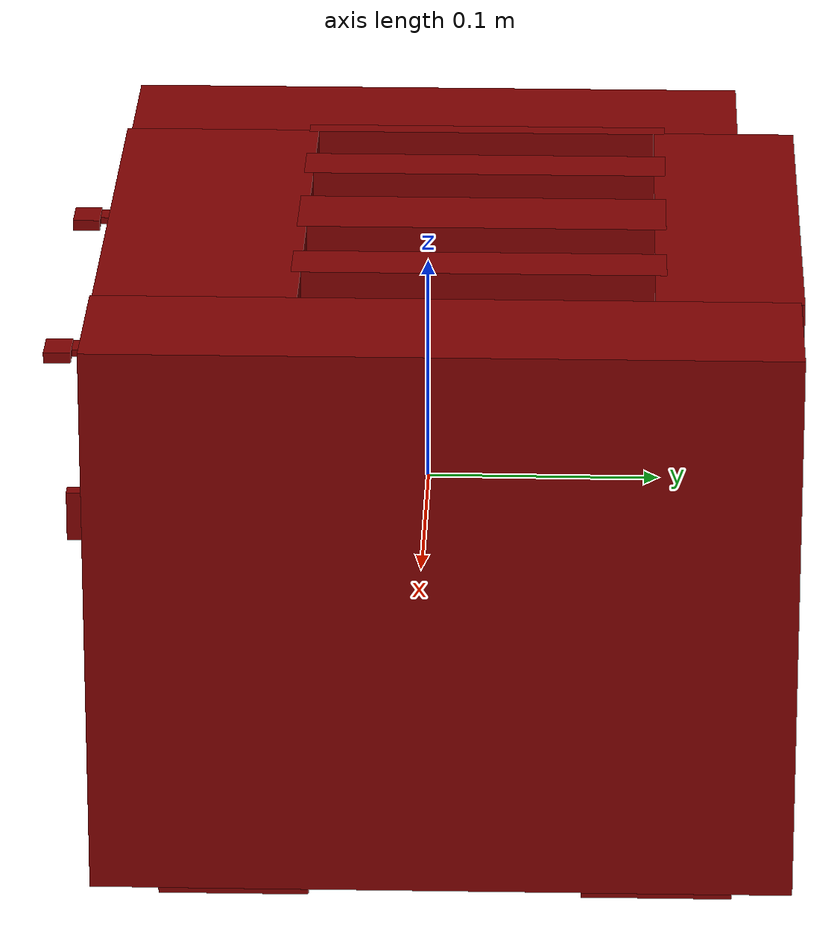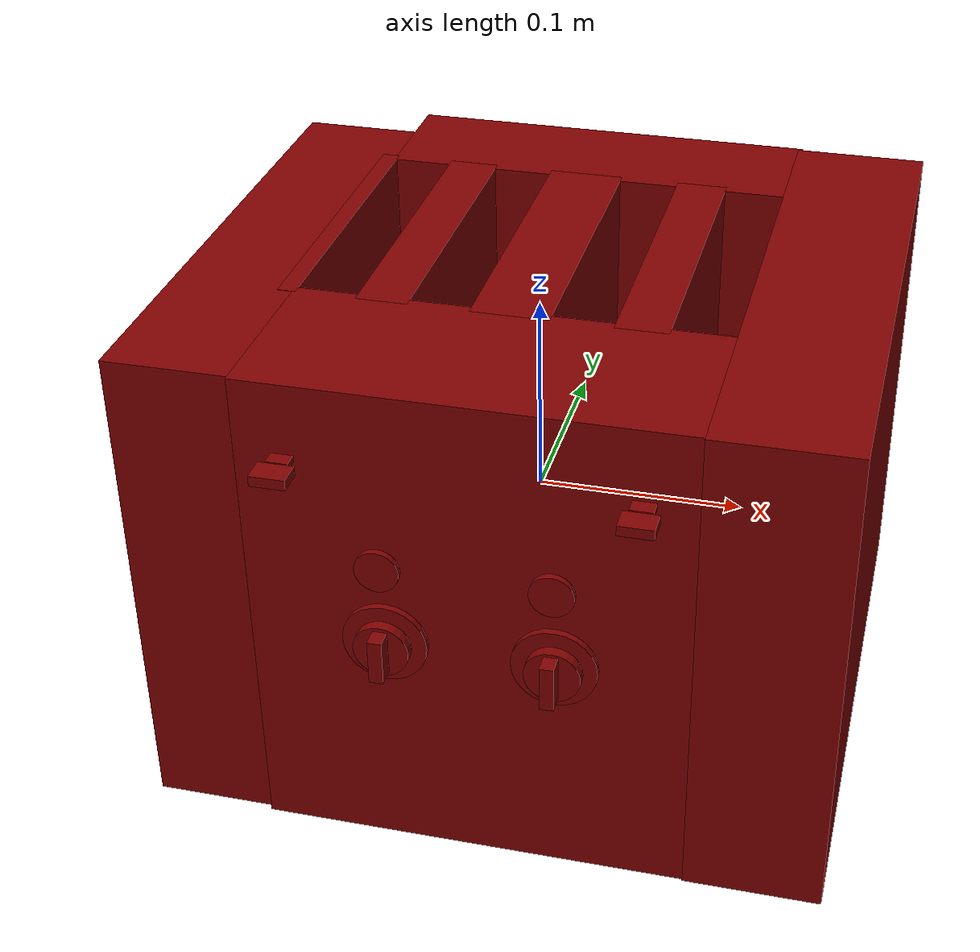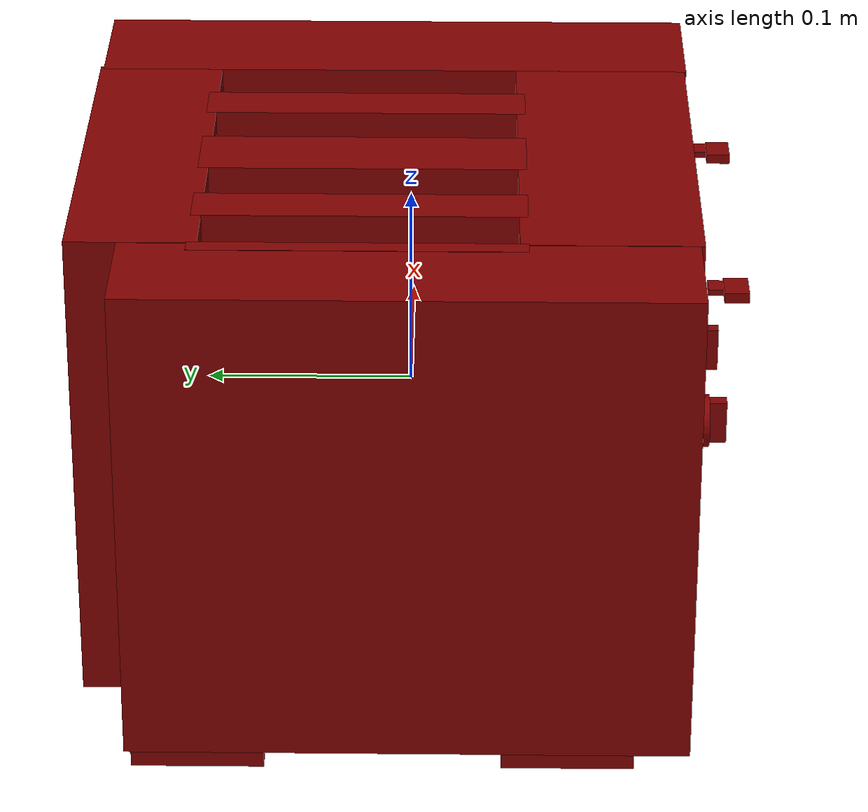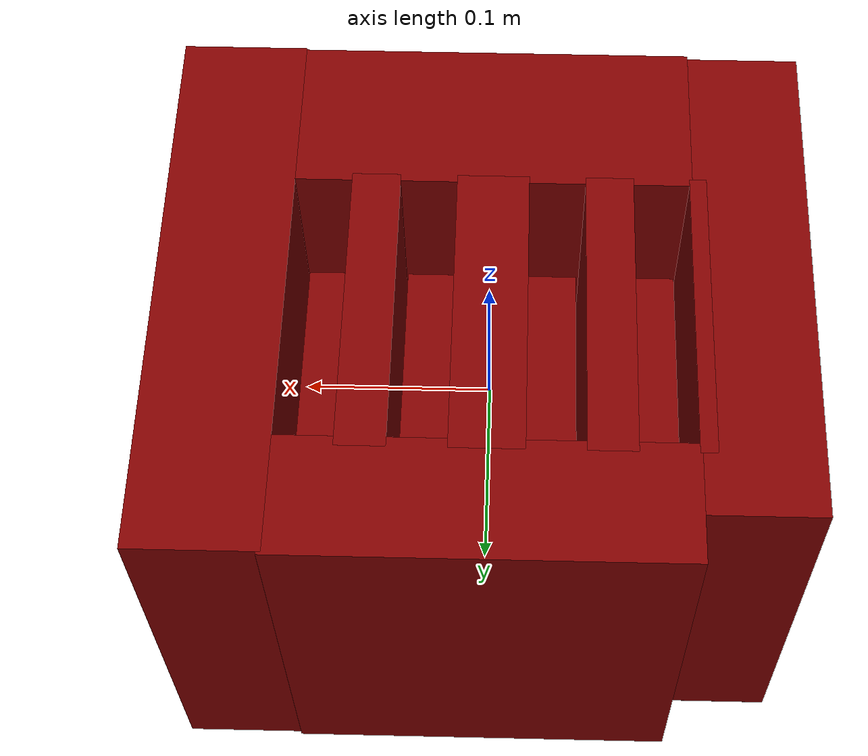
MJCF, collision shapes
<?xml version='1.0' encoding='UTF-8'?>
<mujoco model="model">
  <option timestep="0.002" gravity="0.0 0.0 -9.81"/>
  <compiler angle="radian"/>
  <asset>
    <mesh file="visuals/sideL_button_cancel.obj" name="sideL_button_cancel_vis"/>
    <mesh file="visuals/sideL_knob_doneness.obj" name="sideL_knob_doneness_vis"/>
    <mesh file="visuals/sideL_lever.obj" name="sideL_lever_vis"/>
    <mesh file="visuals/sideR_button_cancel.obj" name="sideR_button_cancel_vis"/>
    <mesh file="visuals/sideR_knob_doneness.obj" name="sideR_knob_doneness_vis"/>
    <mesh file="visuals/sideR_lever.obj" name="sideR_lever_vis"/>
    <mesh file="visuals/Body001.obj" name="Body001_vis"/>
    <mesh file="visuals/Body002.obj" name="Body002_vis"/>
    <texture file="visuals/T_BC001.png" name="Body001_material" type="2d"/>
    <material name="Body001_material" rgba="1 1 1 1.0" texture="Body001_material" shininess="0.4472135901451111" specular="0.3103448502657381"/>
    <texture file="visuals/T_BC001.png" name="sideL_button_cancel_material" type="2d"/>
    <material name="sideL_button_cancel_material" rgba="1 1 1 1.0" texture="sideL_button_cancel_material" shininess="0.4472135901451111" specular="0.3103448502657381"/>
    <texture file="visuals/T_BC001.png" name="sideL_knob_doneness_material" type="2d"/>
    <material name="sideL_knob_doneness_material" rgba="1 1 1 1.0" texture="sideL_knob_doneness_material" shininess="0.4472135901451111" specular="0.3103448502657381"/>
    <texture file="visuals/T_BC001.png" name="sideL_lever_material" type="2d"/>
    <material name="sideL_lever_material" rgba="1 1 1 1.0" texture="sideL_lever_material" shininess="0.4472135901451111" specular="0.3103448502657381"/>
    <texture file="visuals/T_BC001.png" name="sideR_button_cancel_material" type="2d"/>
    <material name="sideR_button_cancel_material" rgba="1 1 1 1.0" texture="sideR_button_cancel_material" shininess="0.4472135901451111" specular="0.3103448502657381"/>
    <texture file="visuals/T_BC001.png" name="sideR_knob_doneness_material" type="2d"/>
    <material name="sideR_knob_doneness_material" rgba="1 1 1 1.0" texture="sideR_knob_doneness_material" shininess="0.4472135901451111" specular="0.3103448502657381"/>
    <texture file="visuals/T_BC001.png" name="sideR_lever_material" type="2d"/>
    <material name="sideR_lever_material" rgba="1 1 1 1.0" texture="sideR_lever_material" shininess="0.4472135901451111" specular="0.3103448502657381"/>
    <texture file="visuals/T_BC001.png" name="Body002_material" type="2d"/>
    <material name="Body002_material" rgba="1 1 1 1.0" texture="Body002_material" shininess="1" specular="1"/>
  </asset>
  <default>
    <default class="visual">
      <geom conaffinity="0" contype="0" group="1" type="mesh"/>
    </default>
    <default class="collision_1">
      <geom group="0" rgba="0.5 0 0 0.5" solref="0.004 1" solimp="0.998 0.998 0.001"/>
    </default>
    <default class="collision_2">
      <geom group="0" rgba="0.5 0 0 0.5" solref="0.004 1" solimp="0.998 0.998 0.001"/>
    </default>
    <default class="collision_3">
      <geom group="0" rgba="0.5 0 0 0.5" solref="0.004 1" solimp="0.998 0.998 0.001"/>
    </default>
    <default class="collision_4">
      <geom group="0" rgba="0.5 0 0 0.5" solref="0.004 1" solimp="0.998 0.998 0.001"/>
    </default>
    <default class="collision_5">
      <geom group="0" rgba="0.5 0 0 0.5" solref="0.004 1" solimp="0.998 0.998 0.001"/>
    </default>
    <default class="collision_6">
      <geom group="0" rgba="0.5 0 0 0.5" solref="0.004 1" solimp="0.998 0.998 0.001"/>
    </default>
    <default class="collision_7">
      <geom group="0" rgba="0.5 0 0 0.5" solref="0.004 1" solimp="0.998 0.998 0.001"/>
    </default>
    <default class="collision_8">
      <geom group="0" rgba="0.5 0 0 0.5" solref="0.004 1" solimp="0.998 0.998 0.001"/>
    </default>
    <default class="spawn">
      <geom group="0" rgba="1 1 1 0.5" contype="0" conaffinity="0"/>
      <site group="0" rgba="1 1 1 0.5"/>
    </default>
    <default class="region">
      <geom group="1" conaffinity="0" contype="0" rgba="0 1 0 0" mass="0"/>
    </default>
  </default>
  <worldbody>
    <body>
      <body name="object">
        <geom mesh="Body001_vis" type="mesh" solimp="0.998 0.998 0.001" solref="0.001 1" friction="0.95 0.3 0.1" class="visual" material="Body001_material"/>
        <geom type="box" pos="0.00062586 -0.09355983 0.00172906" size="0.10200154036283493 0.0423552580177784 0.12018711119890213" quat="1.0 0.0 0.0 0.0" class="collision_1"/>
        <geom type="box" pos="0.00062666 0.12736655 0.00172906" size="0.10174476355314255 0.03075541742146015 0.12018713355064392" quat="1.0 0.0 0.0 0.0" class="collision_1"/>
        <geom type="box" pos="0.12193061 -0.07734576 -0.11861029" size="0.03183386102318764 0.031489286571741104 0.007651138585060835" quat="1.0 0.0 0.0 0.0" class="collision_1"/>
        <geom type="box" pos="-0.01672585 -0.08744895 -0.11861029" size="0.018773581832647324 0.020808225497603416 0.006321911234408617" quat="1.0 0.0 0.0 0.0" class="collision_1"/>
        <geom type="box" pos="-0.01672585 0.10941975 -0.11861029" size="0.018773527815937996 0.017574893310666084 0.006321890279650688" quat="1.0 0.0 0.0 0.0" class="collision_1"/>
        <geom type="box" pos="-0.12524688 -0.07622369 -0.11861029" size="0.03183387964963913 0.031489308923482895 0.007651146501302719" quat="1.0 0.0 0.0 0.0" class="collision_1"/>
        <geom type="box" pos="0.12145668 0.10015215 -0.11861029" size="0.03183388337492943 0.03148931264877319 0.007651147898286581" quat="1.0 0.0 0.0 0.0" class="collision_1"/>
        <geom type="box" pos="-0.12572086 0.09903001 -0.11861029" size="0.031833890825510025 0.03148932009935379 0.007651144172996283" quat="1.0 0.0 0.0 0.0" class="collision_1"/>
        <geom type="box" pos="-0.00057874 0.02311775 0.01895381" size="0.01828160136938095 0.07838138937950134 0.10296251624822617" quat="1.0 0.0 0.0 0.0" class="collision_1"/>
        <geom type="box" pos="0.00040911 0.02311775 -0.08250634" size="0.10419651865959167 0.0783819854259491 0.03505980595946312" quat="1.0 0.0 0.0 0.0" class="collision_1"/>
        <geom type="box" pos="-0.10417006 0.02311773 0.01895381" size="0.004292699508368969 0.07838136702775955 0.10296256095170975" quat="1.0 0.0 0.0 0.0" class="collision_1"/>
        <geom type="box" pos="-0.05950329 0.02311775 0.01895381" size="0.01213828194886446 0.07838114351034164 0.10296288132667542" quat="1.0 0.0 0.0 0.0" class="collision_1"/>
        <geom type="box" pos="0.05873193 0.02311775 0.01895381" size="0.012336074374616146 0.07838139683008194 0.10296259820461273" quat="1.0 0.0 0.0 0.0" class="collision_1"/>
        <geom type="box" pos="0.10276670 0.02311777 0.01895381" size="0.002607272006571293 0.07838138192892075 0.10296262055635452" quat="1.0 0.0 0.0 0.0" class="collision_1"/>
        <geom type="box" pos="0.13224380 0.00991620 0.00172906" size="0.03220511972904205 0.14674082398414612 0.12018747627735138" quat="1.0 0.0 0.0 0.0" class="collision_1"/>
        <geom type="cylinder" pos="-0.03745455 -0.13624727 -0.00302669" size="0.019571812823414803 0.003010922810062766" quat="0.7071067094802856 -0.70710688829422 -1.5700925641616852e-16 -1.2790027470567158e-23" class="collision_1"/>
        <geom type="cylinder" pos="0.03959883 -0.13637664 -0.00302598" size="0.019571812823414803 0.003010922810062766" quat="0.7071067094802856 -0.70710688829422 -1.5700925641616852e-16 -1.2790027470567158e-23" class="collision_1"/>
        <geom type="box" pos="-0.12968662 -0.00014497 0.00202992" size="0.02911638282239437 0.1338164061307907 0.11970527470111847" quat="1.0 0.0 0.0 0.0" class="collision_1"/>
        <body name="sideL_button_cancel">
          <joint axis="0.0 1.0 0.0" pos="-0.03852065 -0.13960360 0.03764944" limited="true" name="sideL_button_cancel_joint" range="0.0 0.0015" type="slide" damping="1" frictionloss="1" armature=".01" stiffness="4" springref="-1"/>
          <geom mesh="sideL_button_cancel_vis" type="mesh" solimp="0.998 0.998 0.001" solref="0.001 1" friction="0.95 0.3 0.1" class="visual" material="sideL_button_cancel_material"/>
          <geom class="collision_2" type="cylinder" pos="-0.03851327 -0.14017975 0.03732108" size="0.010162713006138802 0.00156362762209028" quat="0.7071055173873901 -0.7071080803871155 0.0 0.0" name="sideL_button_cancel_main"/>
        </body>
        <body name="sideL_knob_doneness">
          <joint axis="0.0 1.0 0.0" pos="-0.03763602 -0.14637301 -0.00274262" limited="true" name="sideL_knob_doneness_joint" range="0.0 5.235987755982989" type="hinge" damping="0.05" armature="1" frictionloss="0.75"/>
          <geom mesh="sideL_knob_doneness_vis" type="mesh" solimp="0.998 0.998 0.001" solref="0.001 1" friction="0.95 0.3 0.1" class="visual" material="sideL_knob_doneness_material"/>
          <geom class="collision_3" type="box" pos="-0.03713045 -0.14903020 -0.00284840" size="0.0033021767158061266 0.004736431408673525 0.010830680839717388" quat="1.0 0.0 0.0 0.0" name="sideL_knob_doneness_main" friction="100 0.5 0.01"/>
          <geom type="cylinder" pos="-0.03745455 -0.14251816 -0.00302669" size="0.01283847726881504 0.0026723884511739016" quat="0.7071067094802856 -0.70710688829422 -1.5700925641616852e-16 -1.2790027470567158e-23" class="collision_3" friction="100 0.5 0.01"/>
        </body>
        <body name="sideL_lever">
          <joint axis="0.0 0.0 -1.0" pos="-0.07795057 -0.14789013 0.08757915" limited="true" name="sideL_lever_joint" range="0.0 0.075" type="slide" damping="1" frictionloss="1" armature=".1" stiffness="3" springref="-0.5"/>
          <geom class="region" name="reg_sideL_slotR" type="box" pos="-0.03263264 0.022852679999999997 0.12456758000000001" size="0.014777229999999999 0.07173584 0.07600023"/>
          <geom class="region" name="reg_sideL_slotL" type="box" pos="-0.085524115 0.022852679999999997 0.124567355" size="0.014979425000000005 0.07173584 0.076000005"/>
          <geom mesh="sideL_lever_vis" type="mesh" solimp="0.998 0.998 0.001" solref="0.001 1" friction="0.95 0.3 0.1" class="visual" material="sideL_lever_material"/>
          <geom class="collision_4" type="box" pos="-0.07769195 -0.15248833 0.08772262" size="0.008097376674413681 0.005800733342766762 0.0024126821663230658" quat="1.0 0.0 0.0 0.0" name="sideL_lever_handle"/>
          <geom type="box" pos="-0.07769202 -0.14280797 0.08892062" size="0.005002113059163094 0.0035833732690662146 0.0014904220588505268" quat="1.0 0.0 0.0 0.0" class="collision_4"/>
          <geom class="collision_4" type="box" pos="-0.08570637 0.02279413 0.04112991" size="0.012999988161027431 0.07004314661026001 0.002101290039718151" quat="1.0 0.0 0.0 0.0" name="sideL_slotL_floor"/>
          <geom class="collision_4" type="box" pos="-0.03276232 0.02296647 0.04112991" size="0.012999998405575752 0.07004319876432419 0.002101290039718151" quat="1.0 0.0 0.0 0.0" name="sideL_slotR_floor"/>
        </body>
        <body name="sideR_button_cancel">
          <joint axis="0.0 1.0 0.0" pos="0.03857795 -0.13960360 0.03764944" limited="true" name="sideR_button_cancel_joint" range="0.0 0.0015" type="slide" damping="1" frictionloss="1" armature=".01" stiffness="4" springref="-1"/>
          <geom mesh="sideR_button_cancel_vis" type="mesh" solimp="0.998 0.998 0.001" solref="0.001 1" friction="0.95 0.3 0.1" class="visual" material="sideR_button_cancel_material"/>
          <geom class="collision_5" type="cylinder" pos="0.03907094 -0.14040179 0.03758574" size="0.010162713006138802 0.00156362762209028" quat="0.7071055173873901 -0.7071080803871155 0.0 0.0" name="sideR_button_cancel_main"/>
        </body>
        <body name="sideR_knob_doneness">
          <joint axis="0.0 1.0 0.0" pos="0.03962178 -0.14637275 -0.00274262" limited="true" name="sideR_knob_doneness_joint" range="0.0 5.235987755982989" type="hinge" damping="0.05" frictionloss="0.75" armature="1"/>
          <geom mesh="sideR_knob_doneness_vis" type="mesh" solimp="0.998 0.998 0.001" solref="0.001 1" friction="0.95 0.3 0.1" class="visual" material="sideR_knob_doneness_material"/>
          <geom class="collision_6" type="box" pos="0.03976133 -0.14945548 -0.00284496" size="0.003200133563950658 0.004547525197267532 0.011008615605533123" quat="1.0 0.0 0.0 0.0" name="sideR_knob_doneness_main" friction="100 0.5 0.01"/>
          <geom type="cylinder" pos="0.04004515 -0.14264753 -0.00302598" size="0.01283847726881504 0.0026723884511739016" quat="0.7071067094802856 -0.70710688829422 -1.5700925641616852e-16 -1.2790027470567158e-23" class="collision_6" friction="100 0.5 0.01"/>
        </body>
        <body name="sideR_lever">
          <joint axis="0.0 0.0 -1.0" pos="0.07785595 -0.14789013 0.08757915" limited="true" name="sideR_lever_joint" range="0.0 0.075" type="slide" damping="1" frictionloss="1" armature=".1" stiffness="3" springref="-0.5"/>
          <geom class="region" name="reg_sideR_slotR" type="box" pos="0.085961695 0.022852679999999997 0.12456758000000001" size="0.015642255 0.07173584 0.07600023"/>
          <geom class="region" name="reg_sideR_slotL" type="box" pos="0.032410855 0.022852679999999997 0.12456758000000001" size="0.014988025000000002 0.07173584 0.07600023"/>
          <geom mesh="sideR_lever_vis" type="mesh" solimp="0.998 0.998 0.001" solref="0.001 1" friction="0.95 0.3 0.1" class="visual" material="sideR_lever_material"/>
          <geom class="collision_7" type="box" pos="0.07737340 -0.15248833 0.08772262" size="0.007918057031929493 0.005672273226082325 0.0023592521902173758" quat="1.0 0.0 0.0 0.0" name="sideR_lever_handle"/>
          <geom type="box" pos="0.07737333 -0.14280797 0.08892062" size="0.005163007415831089 0.0036986335180699825 0.0015383618883788586" quat="1.0 0.0 0.0 0.0" class="collision_7"/>
          <geom class="collision_7" type="box" pos="0.03227722 0.02296647 0.04112991" size="0.01299999374896288 0.0700431764125824 0.002101290039718151" quat="1.0 0.0 0.0 0.0" name="sideR_slotL_floor"/>
          <geom class="collision_7" type="box" pos="0.08571027 0.02296647 0.04112991" size="0.012999998405575752 0.07004319876432419 0.002101290039718151" quat="1.0 0.0 0.0 0.0" name="sideR_slotR_floor"/>
        </body>
        <body name="Body002">
          <geom mesh="Body002_vis" type="mesh" solimp="0.998 0.998 0.001" solref="0.001 1" friction="0.95 0.3 0.1" class="visual" material="Body002_material"/>
        </body>
        <geom class="region" name="reg_main" type="box" pos="-6.000000001005201e-08 0.010103504999999999 -4.2084999999997263e-05" size="0.16982545 0.14951026499999998 0.127211255"/>
      </body>
    </body>
  </worldbody>
  <actuator>
    <motor name="sideL_button_cancel_joint_actuator" joint="sideL_button_cancel_joint" gear="0.1"/>
    <motor name="sideL_knob_doneness_joint_actuator" joint="sideL_knob_doneness_joint" gear="10"/>
    <motor name="sideL_lever_joint_actuator" joint="sideL_lever_joint" gear="5"/>
    <motor name="sideR_button_cancel_joint_actuator" joint="sideR_button_cancel_joint" gear="0.1"/>
    <motor name="sideR_knob_doneness_joint_actuator" joint="sideR_knob_doneness_joint" gear="10"/>
    <motor name="sideR_lever_joint_actuator" joint="sideR_lever_joint" gear="5"/>
  </actuator>
</mujoco>
